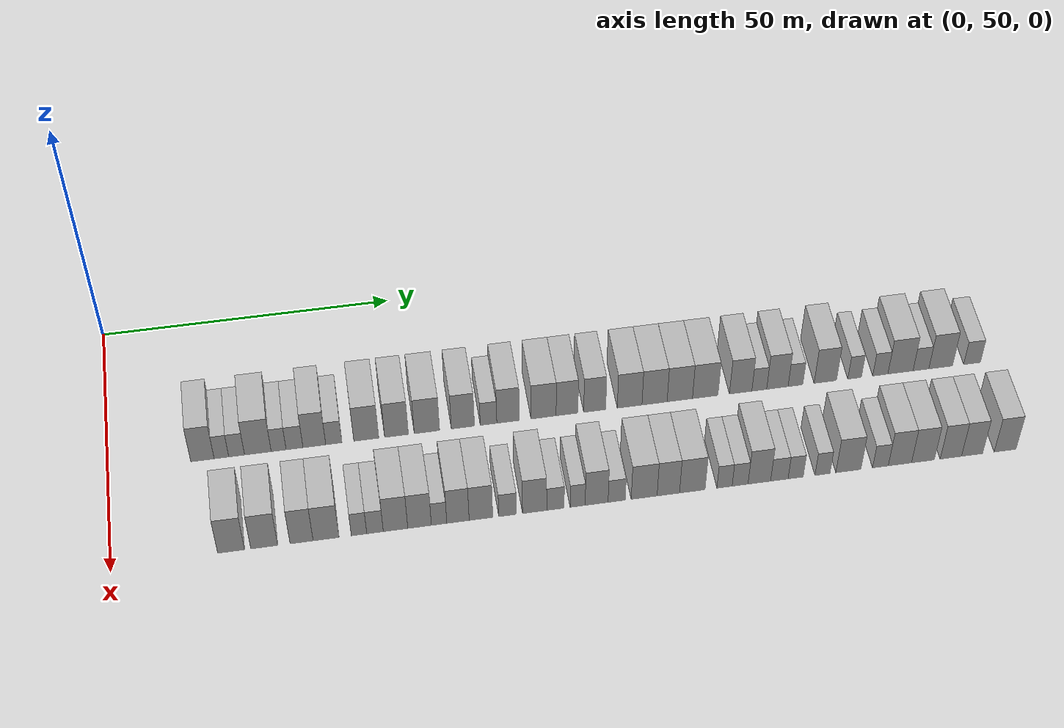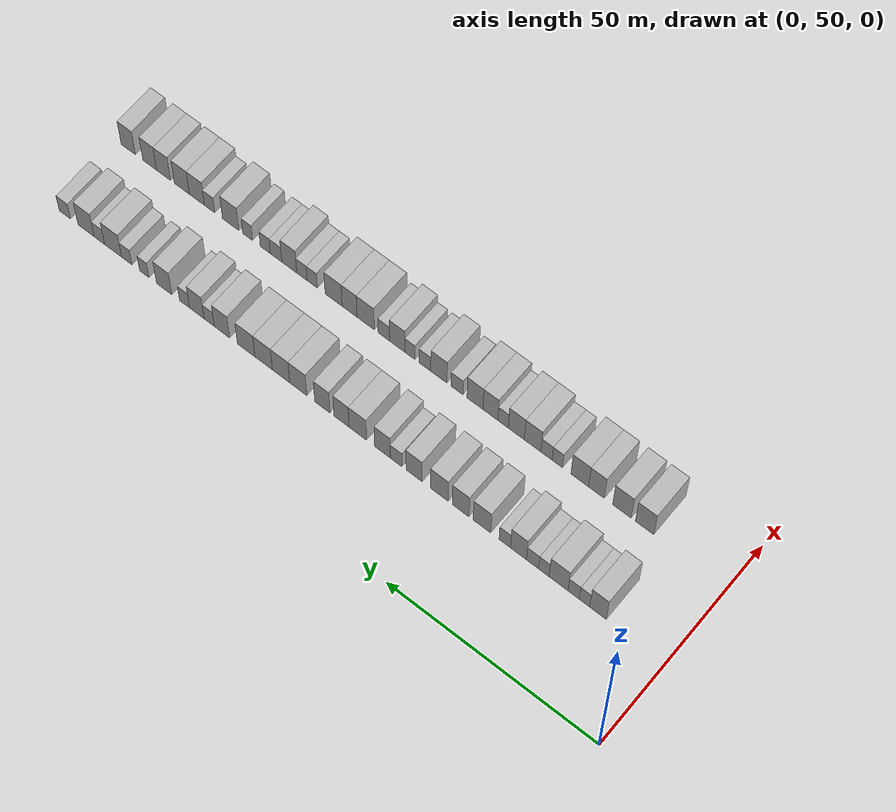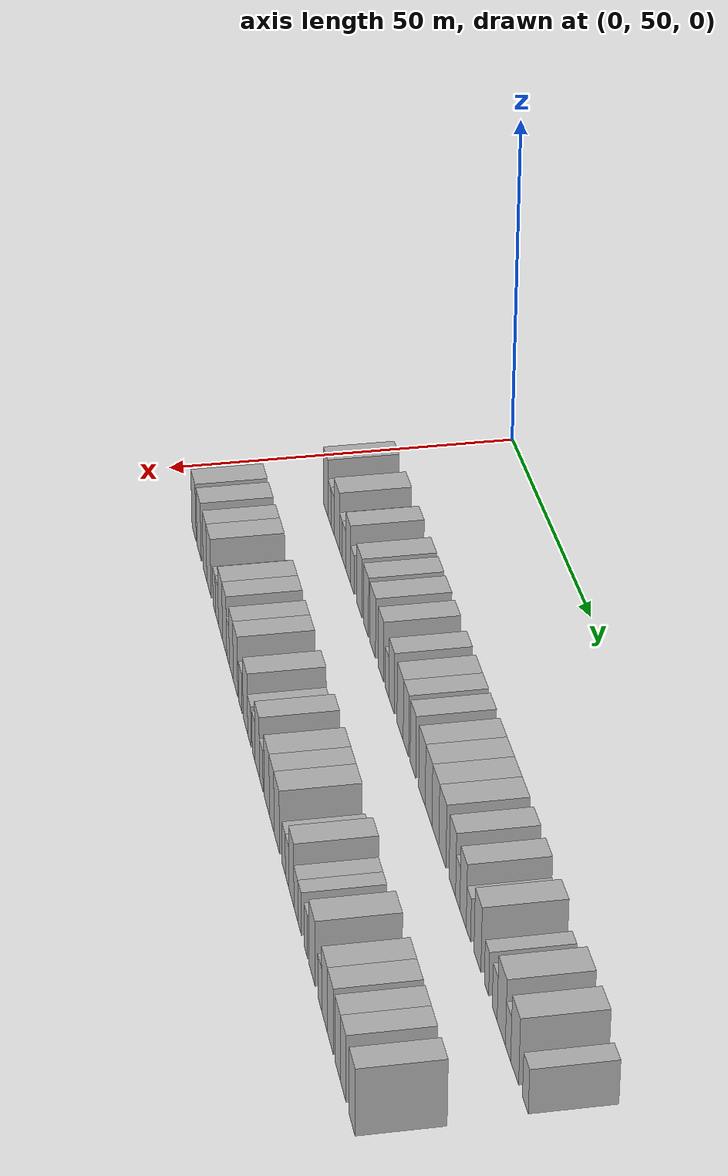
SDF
<sdf version="1.6">
 <world name="default">
  <model name="building_65">
   <static>1</static>
   <pose>25.0000 65.7250 0 0.000000 0.000000 0.000000</pose>
   <link name="link">
    <pose>0 0 4.50 0 0 0</pose>
    <collision name="collision"><geometry><box><size>10.0000 3.8782 9.0000</size></box></geometry></collision>
    <visual name="visual">
     <cast_shadows>0</cast_shadows>
     <geometry><box><size>10.0000 3.8782 9.0000</size></box></geometry>
     <material>
      <script>
       <uri>model://HANNAS_wall/materials/scripts</uri>
       <uri>model://HANNAS_wall/materials/textures</uri>
       <name>vrc/HANNAS_wall</name>
      </script>
     </material>
    </visual>
   </link>
  </model>
  <model name="building_66">
   <static>1</static>
   <pose>25.0000 68.8838 0 0.000000 0.000000 0.000000</pose>
   <link name="link">
    <pose>0 0 3.00 0 0 0</pose>
    <collision name="collision"><geometry><box><size>10.0000 2.4393 6.0000</size></box></geometry></collision>
    <visual name="visual">
     <cast_shadows>0</cast_shadows>
     <geometry><box><size>10.0000 2.4393 6.0000</size></box></geometry>
     <material>
      <script>
       <uri>model://HANNAS_wall/materials/scripts</uri>
       <uri>model://HANNAS_wall/materials/textures</uri>
       <name>vrc/HANNAS_wall</name>
      </script>
     </material>
    </visual>
   </link>
  </model>
  <model name="building_67">
   <static>1</static>
   <pose>25.0000 71.4179 0 0.000000 0.000000 0.000000</pose>
   <link name="link">
    <pose>0 0 3.00 0 0 0</pose>
    <collision name="collision"><geometry><box><size>10.0000 2.6290 6.0000</size></box></geometry></collision>
    <visual name="visual">
     <cast_shadows>0</cast_shadows>
     <geometry><box><size>10.0000 2.6290 6.0000</size></box></geometry>
     <material>
      <script>
       <uri>model://HANNAS_wall/materials/scripts</uri>
       <uri>model://HANNAS_wall/materials/textures</uri>
       <name>vrc/HANNAS_wall</name>
      </script>
     </material>
    </visual>
   </link>
  </model>
  <model name="building_68">
   <static>1</static>
   <pose>25.0000 74.9587 0 0.000000 0.000000 0.000000</pose>
   <link name="link">
    <pose>0 0 4.50 0 0 0</pose>
    <collision name="collision"><geometry><box><size>10.0000 4.4525 9.0000</size></box></geometry></collision>
    <visual name="visual">
     <cast_shadows>0</cast_shadows>
     <geometry><box><size>10.0000 4.4525 9.0000</size></box></geometry>
     <material>
      <script>
       <uri>model://HANNAS_wall/materials/scripts</uri>
       <uri>model://HANNAS_wall/materials/textures</uri>
       <name>vrc/HANNAS_wall</name>
      </script>
     </material>
    </visual>
   </link>
  </model>
  <model name="building_69">
   <static>1</static>
   <pose>25.0000 78.4332 0 0.000000 0.000000 0.000000</pose>
   <link name="link">
    <pose>0 0 3.00 0 0 0</pose>
    <collision name="collision"><geometry><box><size>10.0000 2.4965 6.0000</size></box></geometry></collision>
    <visual name="visual">
     <cast_shadows>0</cast_shadows>
     <geometry><box><size>10.0000 2.4965 6.0000</size></box></geometry>
     <material>
      <script>
       <uri>model://HANNAS_wall/materials/scripts</uri>
       <uri>model://HANNAS_wall/materials/textures</uri>
       <name>vrc/HANNAS_wall</name>
      </script>
     </material>
    </visual>
   </link>
  </model>
  <model name="building_70">
   <static>1</static>
   <pose>25.0000 81.0950 0 0.000000 0.000000 0.000000</pose>
   <link name="link">
    <pose>0 0 3.00 0 0 0</pose>
    <collision name="collision"><geometry><box><size>10.0000 2.8271 6.0000</size></box></geometry></collision>
    <visual name="visual">
     <cast_shadows>0</cast_shadows>
     <geometry><box><size>10.0000 2.8271 6.0000</size></box></geometry>
     <material>
      <script>
       <uri>model://HANNAS_wall/materials/scripts</uri>
       <uri>model://HANNAS_wall/materials/textures</uri>
       <name>vrc/HANNAS_wall</name>
      </script>
     </material>
    </visual>
   </link>
  </model>
  <model name="building_71">
   <static>1</static>
   <pose>25.0000 84.4213 0 0.000000 0.000000 0.000000</pose>
   <link name="link">
    <pose>0 0 4.50 0 0 0</pose>
    <collision name="collision"><geometry><box><size>10.0000 3.8255 9.0000</size></box></geometry></collision>
    <visual name="visual">
     <cast_shadows>0</cast_shadows>
     <geometry><box><size>10.0000 3.8255 9.0000</size></box></geometry>
     <material>
      <script>
       <uri>model://HANNAS_wall/materials/scripts</uri>
       <uri>model://HANNAS_wall/materials/textures</uri>
       <name>vrc/HANNAS_wall</name>
      </script>
     </material>
    </visual>
   </link>
  </model>
  <model name="building_72">
   <static>1</static>
   <pose>25.0000 87.6962 0 0.000000 0.000000 0.000000</pose>
   <link name="link">
    <pose>0 0 3.00 0 0 0</pose>
    <collision name="collision"><geometry><box><size>10.0000 2.7242 6.0000</size></box></geometry></collision>
    <visual name="visual">
     <cast_shadows>0</cast_shadows>
     <geometry><box><size>10.0000 2.7242 6.0000</size></box></geometry>
     <material>
      <script>
       <uri>model://HANNAS_wall/materials/scripts</uri>
       <uri>model://HANNAS_wall/materials/textures</uri>
       <name>vrc/HANNAS_wall</name>
      </script>
     </material>
    </visual>
   </link>
  </model>
  <model name="building_73">
   <static>1</static>
   <pose>25.0000 93.1624 0 0.000000 0.000000 0.000000</pose>
   <link name="link">
    <pose>0 0 4.50 0 0 0</pose>
    <collision name="collision"><geometry><box><size>10.0000 4.2083 9.0000</size></box></geometry></collision>
    <visual name="visual">
     <cast_shadows>0</cast_shadows>
     <geometry><box><size>10.0000 4.2083 9.0000</size></box></geometry>
     <material>
      <script>
       <uri>model://HANNAS_wall/materials/scripts</uri>
       <uri>model://HANNAS_wall/materials/textures</uri>
       <name>vrc/HANNAS_wall</name>
      </script>
     </material>
    </visual>
   </link>
  </model>
  <model name="building_74">
   <static>1</static>
   <pose>25.0000 98.2711 0 0.000000 0.000000 0.000000</pose>
   <link name="link">
    <pose>0 0 4.50 0 0 0</pose>
    <collision name="collision"><geometry><box><size>10.0000 4.0091 9.0000</size></box></geometry></collision>
    <visual name="visual">
     <cast_shadows>0</cast_shadows>
     <geometry><box><size>10.0000 4.0091 9.0000</size></box></geometry>
     <material>
      <script>
       <uri>model://HANNAS_wall/materials/scripts</uri>
       <uri>model://HANNAS_wall/materials/textures</uri>
       <name>vrc/HANNAS_wall</name>
      </script>
     </material>
    </visual>
   </link>
  </model>
  <model name="building_75">
   <static>1</static>
   <pose>25.0000 103.4244 0 0.000000 0.000000 0.000000</pose>
   <link name="link">
    <pose>0 0 4.50 0 0 0</pose>
    <collision name="collision"><geometry><box><size>10.0000 4.2974 9.0000</size></box></geometry></collision>
    <visual name="visual">
     <cast_shadows>0</cast_shadows>
     <geometry><box><size>10.0000 4.2974 9.0000</size></box></geometry>
     <material>
      <script>
       <uri>model://HANNAS_wall/materials/scripts</uri>
       <uri>model://HANNAS_wall/materials/textures</uri>
       <name>vrc/HANNAS_wall</name>
      </script>
     </material>
    </visual>
   </link>
  </model>
  <model name="building_76">
   <static>1</static>
   <pose>25.0000 109.5389 0 0.000000 0.000000 0.000000</pose>
   <link name="link">
    <pose>0 0 4.50 0 0 0</pose>
    <collision name="collision"><geometry><box><size>10.0000 3.9318 9.0000</size></box></geometry></collision>
    <visual name="visual">
     <cast_shadows>0</cast_shadows>
     <geometry><box><size>10.0000 3.9318 9.0000</size></box></geometry>
     <material>
      <script>
       <uri>model://HANNAS_wall/materials/scripts</uri>
       <uri>model://HANNAS_wall/materials/textures</uri>
       <name>vrc/HANNAS_wall</name>
      </script>
     </material>
    </visual>
   </link>
  </model>
  <model name="building_77">
   <static>1</static>
   <pose>25.0000 113.9187 0 0.000000 0.000000 0.000000</pose>
   <link name="link">
    <pose>0 0 3.00 0 0 0</pose>
    <collision name="collision"><geometry><box><size>10.0000 2.8277 6.0000</size></box></geometry></collision>
    <visual name="visual">
     <cast_shadows>0</cast_shadows>
     <geometry><box><size>10.0000 2.8277 6.0000</size></box></geometry>
     <material>
      <script>
       <uri>model://HANNAS_wall/materials/scripts</uri>
       <uri>model://HANNAS_wall/materials/textures</uri>
       <name>vrc/HANNAS_wall</name>
      </script>
     </material>
    </visual>
   </link>
  </model>
  <model name="building_78">
   <static>1</static>
   <pose>25.0000 117.2568 0 0.000000 0.000000 0.000000</pose>
   <link name="link">
    <pose>0 0 4.50 0 0 0</pose>
    <collision name="collision"><geometry><box><size>10.0000 3.8485 9.0000</size></box></geometry></collision>
    <visual name="visual">
     <cast_shadows>0</cast_shadows>
     <geometry><box><size>10.0000 3.8485 9.0000</size></box></geometry>
     <material>
      <script>
       <uri>model://HANNAS_wall/materials/scripts</uri>
       <uri>model://HANNAS_wall/materials/textures</uri>
       <name>vrc/HANNAS_wall</name>
      </script>
     </material>
    </visual>
   </link>
  </model>
  <model name="building_79">
   <static>1</static>
   <pose>25.0000 123.3394 0 0.000000 0.000000 0.000000</pose>
   <link name="link">
    <pose>0 0 4.50 0 0 0</pose>
    <collision name="collision"><geometry><box><size>10.0000 4.3166 9.0000</size></box></geometry></collision>
    <visual name="visual">
     <cast_shadows>0</cast_shadows>
     <geometry><box><size>10.0000 4.3166 9.0000</size></box></geometry>
     <material>
      <script>
       <uri>model://HANNAS_wall/materials/scripts</uri>
       <uri>model://HANNAS_wall/materials/textures</uri>
       <name>vrc/HANNAS_wall</name>
      </script>
     </material>
    </visual>
   </link>
  </model>
  <model name="building_80">
   <static>1</static>
   <pose>25.0000 127.3701 0 0.000000 0.000000 0.000000</pose>
   <link name="link">
    <pose>0 0 4.50 0 0 0</pose>
    <collision name="collision"><geometry><box><size>10.0000 3.7447 9.0000</size></box></geometry></collision>
    <visual name="visual">
     <cast_shadows>0</cast_shadows>
     <geometry><box><size>10.0000 3.7447 9.0000</size></box></geometry>
     <material>
      <script>
       <uri>model://HANNAS_wall/materials/scripts</uri>
       <uri>model://HANNAS_wall/materials/textures</uri>
       <name>vrc/HANNAS_wall</name>
      </script>
     </material>
    </visual>
   </link>
  </model>
  <model name="building_81">
   <static>1</static>
   <pose>25.0000 132.1347 0 0.000000 0.000000 0.000000</pose>
   <link name="link">
    <pose>0 0 4.50 0 0 0</pose>
    <collision name="collision"><geometry><box><size>10.0000 3.7845 9.0000</size></box></geometry></collision>
    <visual name="visual">
     <cast_shadows>0</cast_shadows>
     <geometry><box><size>10.0000 3.7845 9.0000</size></box></geometry>
     <material>
      <script>
       <uri>model://HANNAS_wall/materials/scripts</uri>
       <uri>model://HANNAS_wall/materials/textures</uri>
       <name>vrc/HANNAS_wall</name>
      </script>
     </material>
    </visual>
   </link>
  </model>
  <model name="building_82">
   <static>1</static>
   <pose>25.0000 138.1658 0 0.000000 0.000000 0.000000</pose>
   <link name="link">
    <pose>0 0 4.50 0 0 0</pose>
    <collision name="collision"><geometry><box><size>10.0000 4.2777 9.0000</size></box></geometry></collision>
    <visual name="visual">
     <cast_shadows>0</cast_shadows>
     <geometry><box><size>10.0000 4.2777 9.0000</size></box></geometry>
     <material>
      <script>
       <uri>model://HANNAS_wall/materials/scripts</uri>
       <uri>model://HANNAS_wall/materials/textures</uri>
       <name>vrc/HANNAS_wall</name>
      </script>
     </material>
    </visual>
   </link>
  </model>
  <model name="building_83">
   <static>1</static>
   <pose>25.0000 142.4885 0 0.000000 0.000000 0.000000</pose>
   <link name="link">
    <pose>0 0 4.50 0 0 0</pose>
    <collision name="collision"><geometry><box><size>10.0000 4.3677 9.0000</size></box></geometry></collision>
    <visual name="visual">
     <cast_shadows>0</cast_shadows>
     <geometry><box><size>10.0000 4.3677 9.0000</size></box></geometry>
     <material>
      <script>
       <uri>model://HANNAS_wall/materials/scripts</uri>
       <uri>model://HANNAS_wall/materials/textures</uri>
       <name>vrc/HANNAS_wall</name>
      </script>
     </material>
    </visual>
   </link>
  </model>
  <model name="building_84">
   <static>1</static>
   <pose>25.0000 146.8752 0 0.000000 0.000000 0.000000</pose>
   <link name="link">
    <pose>0 0 4.50 0 0 0</pose>
    <collision name="collision"><geometry><box><size>10.0000 4.4056 9.0000</size></box></geometry></collision>
    <visual name="visual">
     <cast_shadows>0</cast_shadows>
     <geometry><box><size>10.0000 4.4056 9.0000</size></box></geometry>
     <material>
      <script>
       <uri>model://HANNAS_wall/materials/scripts</uri>
       <uri>model://HANNAS_wall/materials/textures</uri>
       <name>vrc/HANNAS_wall</name>
      </script>
     </material>
    </visual>
   </link>
  </model>
  <model name="building_85">
   <static>1</static>
   <pose>25.0000 151.3005 0 0.000000 0.000000 0.000000</pose>
   <link name="link">
    <pose>0 0 4.50 0 0 0</pose>
    <collision name="collision"><geometry><box><size>10.0000 4.4450 9.0000</size></box></geometry></collision>
    <visual name="visual">
     <cast_shadows>0</cast_shadows>
     <geometry><box><size>10.0000 4.4450 9.0000</size></box></geometry>
     <material>
      <script>
       <uri>model://HANNAS_wall/materials/scripts</uri>
       <uri>model://HANNAS_wall/materials/textures</uri>
       <name>vrc/HANNAS_wall</name>
      </script>
     </material>
    </visual>
   </link>
  </model>
  <model name="building_86">
   <static>1</static>
   <pose>25.0000 157.4861 0 0.000000 0.000000 0.000000</pose>
   <link name="link">
    <pose>0 0 4.50 0 0 0</pose>
    <collision name="collision"><geometry><box><size>10.0000 3.9262 9.0000</size></box></geometry></collision>
    <visual name="visual">
     <cast_shadows>0</cast_shadows>
     <geometry><box><size>10.0000 3.9262 9.0000</size></box></geometry>
     <material>
      <script>
       <uri>model://HANNAS_wall/materials/scripts</uri>
       <uri>model://HANNAS_wall/materials/textures</uri>
       <name>vrc/HANNAS_wall</name>
      </script>
     </material>
    </visual>
   </link>
  </model>
  <model name="building_87">
   <static>1</static>
   <pose>25.0000 160.7470 0 0.000000 0.000000 0.000000</pose>
   <link name="link">
    <pose>0 0 3.00 0 0 0</pose>
    <collision name="collision"><geometry><box><size>10.0000 2.5956 6.0000</size></box></geometry></collision>
    <visual name="visual">
     <cast_shadows>0</cast_shadows>
     <geometry><box><size>10.0000 2.5956 6.0000</size></box></geometry>
     <material>
      <script>
       <uri>model://HANNAS_wall/materials/scripts</uri>
       <uri>model://HANNAS_wall/materials/textures</uri>
       <name>vrc/HANNAS_wall</name>
      </script>
     </material>
    </visual>
   </link>
  </model>
  <model name="building_88">
   <static>1</static>
   <pose>25.0000 163.9266 0 0.000000 0.000000 0.000000</pose>
   <link name="link">
    <pose>0 0 4.50 0 0 0</pose>
    <collision name="collision"><geometry><box><size>10.0000 3.7638 9.0000</size></box></geometry></collision>
    <visual name="visual">
     <cast_shadows>0</cast_shadows>
     <geometry><box><size>10.0000 3.7638 9.0000</size></box></geometry>
     <material>
      <script>
       <uri>model://HANNAS_wall/materials/scripts</uri>
       <uri>model://HANNAS_wall/materials/textures</uri>
       <name>vrc/HANNAS_wall</name>
      </script>
     </material>
    </visual>
   </link>
  </model>
  <model name="building_89">
   <static>1</static>
   <pose>25.0000 167.0963 0 0.000000 0.000000 0.000000</pose>
   <link name="link">
    <pose>0 0 3.00 0 0 0</pose>
    <collision name="collision"><geometry><box><size>10.0000 2.5755 6.0000</size></box></geometry></collision>
    <visual name="visual">
     <cast_shadows>0</cast_shadows>
     <geometry><box><size>10.0000 2.5755 6.0000</size></box></geometry>
     <material>
      <script>
       <uri>model://HANNAS_wall/materials/scripts</uri>
       <uri>model://HANNAS_wall/materials/textures</uri>
       <name>vrc/HANNAS_wall</name>
      </script>
     </material>
    </visual>
   </link>
  </model>
  <model name="building_90">
   <static>1</static>
   <pose>25.0000 172.3574 0 0.000000 0.000000 0.000000</pose>
   <link name="link">
    <pose>0 0 4.50 0 0 0</pose>
    <collision name="collision"><geometry><box><size>10.0000 3.9468 9.0000</size></box></geometry></collision>
    <visual name="visual">
     <cast_shadows>0</cast_shadows>
     <geometry><box><size>10.0000 3.9468 9.0000</size></box></geometry>
     <material>
      <script>
       <uri>model://HANNAS_wall/materials/scripts</uri>
       <uri>model://HANNAS_wall/materials/textures</uri>
       <name>vrc/HANNAS_wall</name>
      </script>
     </material>
    </visual>
   </link>
  </model>
  <model name="building_91">
   <static>1</static>
   <pose>25.0000 177.5365 0 0.000000 0.000000 0.000000</pose>
   <link name="link">
    <pose>0 0 3.00 0 0 0</pose>
    <collision name="collision"><geometry><box><size>10.0000 2.4114 6.0000</size></box></geometry></collision>
    <visual name="visual">
     <cast_shadows>0</cast_shadows>
     <geometry><box><size>10.0000 2.4114 6.0000</size></box></geometry>
     <material>
      <script>
       <uri>model://HANNAS_wall/materials/scripts</uri>
       <uri>model://HANNAS_wall/materials/textures</uri>
       <name>vrc/HANNAS_wall</name>
      </script>
     </material>
    </visual>
   </link>
  </model>
  <model name="building_92">
   <static>1</static>
   <pose>25.0000 182.0920 0 0.000000 0.000000 0.000000</pose>
   <link name="link">
    <pose>0 0 3.00 0 0 0</pose>
    <collision name="collision"><geometry><box><size>10.0000 2.6997 6.0000</size></box></geometry></collision>
    <visual name="visual">
     <cast_shadows>0</cast_shadows>
     <geometry><box><size>10.0000 2.6997 6.0000</size></box></geometry>
     <material>
      <script>
       <uri>model://HANNAS_wall/materials/scripts</uri>
       <uri>model://HANNAS_wall/materials/textures</uri>
       <name>vrc/HANNAS_wall</name>
      </script>
     </material>
    </visual>
   </link>
  </model>
  <model name="building_93">
   <static>1</static>
   <pose>25.0000 185.6768 0 0.000000 0.000000 0.000000</pose>
   <link name="link">
    <pose>0 0 4.50 0 0 0</pose>
    <collision name="collision"><geometry><box><size>10.0000 4.4699 9.0000</size></box></geometry></collision>
    <visual name="visual">
     <cast_shadows>0</cast_shadows>
     <geometry><box><size>10.0000 4.4699 9.0000</size></box></geometry>
     <material>
      <script>
       <uri>model://HANNAS_wall/materials/scripts</uri>
       <uri>model://HANNAS_wall/materials/textures</uri>
       <name>vrc/HANNAS_wall</name>
      </script>
     </material>
    </visual>
   </link>
  </model>
  <model name="building_94">
   <static>1</static>
   <pose>25.0000 189.3159 0 0.000000 0.000000 0.000000</pose>
   <link name="link">
    <pose>0 0 3.00 0 0 0</pose>
    <collision name="collision"><geometry><box><size>10.0000 2.8082 6.0000</size></box></geometry></collision>
    <visual name="visual">
     <cast_shadows>0</cast_shadows>
     <geometry><box><size>10.0000 2.8082 6.0000</size></box></geometry>
     <material>
      <script>
       <uri>model://HANNAS_wall/materials/scripts</uri>
       <uri>model://HANNAS_wall/materials/textures</uri>
       <name>vrc/HANNAS_wall</name>
      </script>
     </material>
    </visual>
   </link>
  </model>
  <model name="building_95">
   <static>1</static>
   <pose>25.0000 192.8333 0 0.000000 0.000000 0.000000</pose>
   <link name="link">
    <pose>0 0 4.50 0 0 0</pose>
    <collision name="collision"><geometry><box><size>10.0000 4.2266 9.0000</size></box></geometry></collision>
    <visual name="visual">
     <cast_shadows>0</cast_shadows>
     <geometry><box><size>10.0000 4.2266 9.0000</size></box></geometry>
     <material>
      <script>
       <uri>model://HANNAS_wall/materials/scripts</uri>
       <uri>model://HANNAS_wall/materials/textures</uri>
       <name>vrc/HANNAS_wall</name>
      </script>
     </material>
    </visual>
   </link>
  </model>
  <model name="building_96">
   <static>1</static>
   <pose>25.0000 198.4437 0 0.000000 0.000000 0.000000</pose>
   <link name="link">
    <pose>0 0 3.00 0 0 0</pose>
    <collision name="collision"><geometry><box><size>10.0000 2.9943 6.0000</size></box></geometry></collision>
    <visual name="visual">
     <cast_shadows>0</cast_shadows>
     <geometry><box><size>10.0000 2.9943 6.0000</size></box></geometry>
     <material>
      <script>
       <uri>model://HANNAS_wall/materials/scripts</uri>
       <uri>model://HANNAS_wall/materials/textures</uri>
       <name>vrc/HANNAS_wall</name>
      </script>
     </material>
    </visual>
   </link>
  </model>
  <model name="building_163">
   <static>1</static>
   <pose>44.0000 69.3342 0 0.000000 0.000000 0.000000</pose>
   <link name="link">
    <pose>0 0 4.50 0 0 0</pose>
    <collision name="collision"><geometry><box><size>10.0000 4.3236 9.0000</size></box></geometry></collision>
    <visual name="visual">
     <cast_shadows>0</cast_shadows>
     <geometry><box><size>10.0000 4.3236 9.0000</size></box></geometry>
     <material>
      <script>
       <uri>model://HANNAS_wall/materials/scripts</uri>
       <uri>model://HANNAS_wall/materials/textures</uri>
       <name>vrc/HANNAS_wall</name>
      </script>
     </material>
    </visual>
   </link>
  </model>
  <model name="building_164">
   <static>1</static>
   <pose>44.0000 74.6701 0 0.000000 0.000000 0.000000</pose>
   <link name="link">
    <pose>0 0 4.50 0 0 0</pose>
    <collision name="collision"><geometry><box><size>10.0000 4.3483 9.0000</size></box></geometry></collision>
    <visual name="visual">
     <cast_shadows>0</cast_shadows>
     <geometry><box><size>10.0000 4.3483 9.0000</size></box></geometry>
     <material>
      <script>
       <uri>model://HANNAS_wall/materials/scripts</uri>
       <uri>model://HANNAS_wall/materials/textures</uri>
       <name>vrc/HANNAS_wall</name>
      </script>
     </material>
    </visual>
   </link>
  </model>
  <model name="building_165">
   <static>1</static>
   <pose>44.0000 80.7098 0 0.000000 0.000000 0.000000</pose>
   <link name="link">
    <pose>0 0 4.50 0 0 0</pose>
    <collision name="collision"><geometry><box><size>10.0000 3.7311 9.0000</size></box></geometry></collision>
    <visual name="visual">
     <cast_shadows>0</cast_shadows>
     <geometry><box><size>10.0000 3.7311 9.0000</size></box></geometry>
     <material>
      <script>
       <uri>model://HANNAS_wall/materials/scripts</uri>
       <uri>model://HANNAS_wall/materials/textures</uri>
       <name>vrc/HANNAS_wall</name>
      </script>
     </material>
    </visual>
   </link>
  </model>
  <model name="building_166">
   <static>1</static>
   <pose>44.0000 84.6831 0 0.000000 0.000000 0.000000</pose>
   <link name="link">
    <pose>0 0 4.50 0 0 0</pose>
    <collision name="collision"><geometry><box><size>10.0000 4.2155 9.0000</size></box></geometry></collision>
    <visual name="visual">
     <cast_shadows>0</cast_shadows>
     <geometry><box><size>10.0000 4.2155 9.0000</size></box></geometry>
     <material>
      <script>
       <uri>model://HANNAS_wall/materials/scripts</uri>
       <uri>model://HANNAS_wall/materials/textures</uri>
       <name>vrc/HANNAS_wall</name>
      </script>
     </material>
    </visual>
   </link>
  </model>
  <model name="building_167">
   <static>1</static>
   <pose>44.0000 90.0458 0 0.000000 0.000000 0.000000</pose>
   <link name="link">
    <pose>0 0 3.00 0 0 0</pose>
    <collision name="collision"><geometry><box><size>10.0000 2.5099 6.0000</size></box></geometry></collision>
    <visual name="visual">
     <cast_shadows>0</cast_shadows>
     <geometry><box><size>10.0000 2.5099 6.0000</size></box></geometry>
     <material>
      <script>
       <uri>model://HANNAS_wall/materials/scripts</uri>
       <uri>model://HANNAS_wall/materials/textures</uri>
       <name>vrc/HANNAS_wall</name>
      </script>
     </material>
    </visual>
   </link>
  </model>
  <model name="building_168">
   <static>1</static>
   <pose>44.0000 92.6474 0 0.000000 0.000000 0.000000</pose>
   <link name="link">
    <pose>0 0 3.00 0 0 0</pose>
    <collision name="collision"><geometry><box><size>10.0000 2.6932 6.0000</size></box></geometry></collision>
    <visual name="visual">
     <cast_shadows>0</cast_shadows>
     <geometry><box><size>10.0000 2.6932 6.0000</size></box></geometry>
     <material>
      <script>
       <uri>model://HANNAS_wall/materials/scripts</uri>
       <uri>model://HANNAS_wall/materials/textures</uri>
       <name>vrc/HANNAS_wall</name>
      </script>
     </material>
    </visual>
   </link>
  </model>
  <model name="building_169">
   <static>1</static>
   <pose>44.0000 95.9989 0 0.000000 0.000000 0.000000</pose>
   <link name="link">
    <pose>0 0 4.50 0 0 0</pose>
    <collision name="collision"><geometry><box><size>10.0000 4.0097 9.0000</size></box></geometry></collision>
    <visual name="visual">
     <cast_shadows>0</cast_shadows>
     <geometry><box><size>10.0000 4.0097 9.0000</size></box></geometry>
     <material>
      <script>
       <uri>model://HANNAS_wall/materials/scripts</uri>
       <uri>model://HANNAS_wall/materials/textures</uri>
       <name>vrc/HANNAS_wall</name>
      </script>
     </material>
    </visual>
   </link>
  </model>
  <model name="building_170">
   <static>1</static>
   <pose>44.0000 99.9365 0 0.000000 0.000000 0.000000</pose>
   <link name="link">
    <pose>0 0 4.50 0 0 0</pose>
    <collision name="collision"><geometry><box><size>10.0000 3.8655 9.0000</size></box></geometry></collision>
    <visual name="visual">
     <cast_shadows>0</cast_shadows>
     <geometry><box><size>10.0000 3.8655 9.0000</size></box></geometry>
     <material>
      <script>
       <uri>model://HANNAS_wall/materials/scripts</uri>
       <uri>model://HANNAS_wall/materials/textures</uri>
       <name>vrc/HANNAS_wall</name>
      </script>
     </material>
    </visual>
   </link>
  </model>
  <model name="building_171">
   <static>1</static>
   <pose>44.0000 103.1350 0 0.000000 0.000000 0.000000</pose>
   <link name="link">
    <pose>0 0 3.00 0 0 0</pose>
    <collision name="collision"><geometry><box><size>10.0000 2.5315 6.0000</size></box></geometry></collision>
    <visual name="visual">
     <cast_shadows>0</cast_shadows>
     <geometry><box><size>10.0000 2.5315 6.0000</size></box></geometry>
     <material>
      <script>
       <uri>model://HANNAS_wall/materials/scripts</uri>
       <uri>model://HANNAS_wall/materials/textures</uri>
       <name>vrc/HANNAS_wall</name>
      </script>
     </material>
    </visual>
   </link>
  </model>
  <model name="building_172">
   <static>1</static>
   <pose>44.0000 106.2392 0 0.000000 0.000000 0.000000</pose>
   <link name="link">
    <pose>0 0 4.50 0 0 0</pose>
    <collision name="collision"><geometry><box><size>10.0000 3.6768 9.0000</size></box></geometry></collision>
    <visual name="visual">
     <cast_shadows>0</cast_shadows>
     <geometry><box><size>10.0000 3.6768 9.0000</size></box></geometry>
     <material>
      <script>
       <uri>model://HANNAS_wall/materials/scripts</uri>
       <uri>model://HANNAS_wall/materials/textures</uri>
       <name>vrc/HANNAS_wall</name>
      </script>
     </material>
    </visual>
   </link>
  </model>
  <model name="building_173">
   <static>1</static>
   <pose>44.0000 110.0184 0 0.000000 0.000000 0.000000</pose>
   <link name="link">
    <pose>0 0 4.50 0 0 0</pose>
    <collision name="collision"><geometry><box><size>10.0000 3.8816 9.0000</size></box></geometry></collision>
    <visual name="visual">
     <cast_shadows>0</cast_shadows>
     <geometry><box><size>10.0000 3.8816 9.0000</size></box></geometry>
     <material>
      <script>
       <uri>model://HANNAS_wall/materials/scripts</uri>
       <uri>model://HANNAS_wall/materials/textures</uri>
       <name>vrc/HANNAS_wall</name>
      </script>
     </material>
    </visual>
   </link>
  </model>
  <model name="building_174">
   <static>1</static>
   <pose>44.0000 114.4213 0 0.000000 0.000000 0.000000</pose>
   <link name="link">
    <pose>0 0 3.00 0 0 0</pose>
    <collision name="collision"><geometry><box><size>10.0000 2.9241 6.0000</size></box></geometry></collision>
    <visual name="visual">
     <cast_shadows>0</cast_shadows>
     <geometry><box><size>10.0000 2.9241 6.0000</size></box></geometry>
     <material>
      <script>
       <uri>model://HANNAS_wall/materials/scripts</uri>
       <uri>model://HANNAS_wall/materials/textures</uri>
       <name>vrc/HANNAS_wall</name>
      </script>
     </material>
    </visual>
   </link>
  </model>
  <model name="building_175">
   <static>1</static>
   <pose>44.0000 118.8833 0 0.000000 0.000000 0.000000</pose>
   <link name="link">
    <pose>0 0 4.50 0 0 0</pose>
    <collision name="collision"><geometry><box><size>10.0000 3.9999 9.0000</size></box></geometry></collision>
    <visual name="visual">
     <cast_shadows>0</cast_shadows>
     <geometry><box><size>10.0000 3.9999 9.0000</size></box></geometry>
     <material>
      <script>
       <uri>model://HANNAS_wall/materials/scripts</uri>
       <uri>model://HANNAS_wall/materials/textures</uri>
       <name>vrc/HANNAS_wall</name>
      </script>
     </material>
    </visual>
   </link>
  </model>
  <model name="building_176">
   <static>1</static>
   <pose>44.0000 122.3314 0 0.000000 0.000000 0.000000</pose>
   <link name="link">
    <pose>0 0 3.00 0 0 0</pose>
    <collision name="collision"><geometry><box><size>10.0000 2.8963 6.0000</size></box></geometry></collision>
    <visual name="visual">
     <cast_shadows>0</cast_shadows>
     <geometry><box><size>10.0000 2.8963 6.0000</size></box></geometry>
     <material>
      <script>
       <uri>model://HANNAS_wall/materials/scripts</uri>
       <uri>model://HANNAS_wall/materials/textures</uri>
       <name>vrc/HANNAS_wall</name>
      </script>
     </material>
    </visual>
   </link>
  </model>
  <model name="building_177">
   <static>1</static>
   <pose>44.0000 126.0296 0 0.000000 0.000000 0.000000</pose>
   <link name="link">
    <pose>0 0 3.00 0 0 0</pose>
    <collision name="collision"><geometry><box><size>10.0000 2.5000 6.0000</size></box></geometry></collision>
    <visual name="visual">
     <cast_shadows>0</cast_shadows>
     <geometry><box><size>10.0000 2.5000 6.0000</size></box></geometry>
     <material>
      <script>
       <uri>model://HANNAS_wall/materials/scripts</uri>
       <uri>model://HANNAS_wall/materials/textures</uri>
       <name>vrc/HANNAS_wall</name>
      </script>
     </material>
    </visual>
   </link>
  </model>
  <model name="building_178">
   <static>1</static>
   <pose>44.0000 129.1845 0 0.000000 0.000000 0.000000</pose>
   <link name="link">
    <pose>0 0 4.50 0 0 0</pose>
    <collision name="collision"><geometry><box><size>10.0000 3.8099 9.0000</size></box></geometry></collision>
    <visual name="visual">
     <cast_shadows>0</cast_shadows>
     <geometry><box><size>10.0000 3.8099 9.0000</size></box></geometry>
     <material>
      <script>
       <uri>model://HANNAS_wall/materials/scripts</uri>
       <uri>model://HANNAS_wall/materials/textures</uri>
       <name>vrc/HANNAS_wall</name>
      </script>
     </material>
    </visual>
   </link>
  </model>
  <model name="building_179">
   <static>1</static>
   <pose>44.0000 132.5199 0 0.000000 0.000000 0.000000</pose>
   <link name="link">
    <pose>0 0 3.00 0 0 0</pose>
    <collision name="collision"><geometry><box><size>10.0000 2.8609 6.0000</size></box></geometry></collision>
    <visual name="visual">
     <cast_shadows>0</cast_shadows>
     <geometry><box><size>10.0000 2.8609 6.0000</size></box></geometry>
     <material>
      <script>
       <uri>model://HANNAS_wall/materials/scripts</uri>
       <uri>model://HANNAS_wall/materials/textures</uri>
       <name>vrc/HANNAS_wall</name>
      </script>
     </material>
    </visual>
   </link>
  </model>
  <model name="building_180">
   <static>1</static>
   <pose>44.0000 137.1189 0 0.000000 0.000000 0.000000</pose>
   <link name="link">
    <pose>0 0 4.50 0 0 0</pose>
    <collision name="collision"><geometry><box><size>10.0000 4.3372 9.0000</size></box></geometry></collision>
    <visual name="visual">
     <cast_shadows>0</cast_shadows>
     <geometry><box><size>10.0000 4.3372 9.0000</size></box></geometry>
     <material>
      <script>
       <uri>model://HANNAS_wall/materials/scripts</uri>
       <uri>model://HANNAS_wall/materials/textures</uri>
       <name>vrc/HANNAS_wall</name>
      </script>
     </material>
    </visual>
   </link>
  </model>
  <model name="building_181">
   <static>1</static>
   <pose>44.0000 141.1713 0 0.000000 0.000000 0.000000</pose>
   <link name="link">
    <pose>0 0 4.50 0 0 0</pose>
    <collision name="collision"><geometry><box><size>10.0000 3.7675 9.0000</size></box></geometry></collision>
    <visual name="visual">
     <cast_shadows>0</cast_shadows>
     <geometry><box><size>10.0000 3.7675 9.0000</size></box></geometry>
     <material>
      <script>
       <uri>model://HANNAS_wall/materials/scripts</uri>
       <uri>model://HANNAS_wall/materials/textures</uri>
       <name>vrc/HANNAS_wall</name>
      </script>
     </material>
    </visual>
   </link>
  </model>
  <model name="building_182">
   <static>1</static>
   <pose>44.0000 145.1978 0 0.000000 0.000000 0.000000</pose>
   <link name="link">
    <pose>0 0 4.50 0 0 0</pose>
    <collision name="collision"><geometry><box><size>10.0000 4.2855 9.0000</size></box></geometry></collision>
    <visual name="visual">
     <cast_shadows>0</cast_shadows>
     <geometry><box><size>10.0000 4.2855 9.0000</size></box></geometry>
     <material>
      <script>
       <uri>model://HANNAS_wall/materials/scripts</uri>
       <uri>model://HANNAS_wall/materials/textures</uri>
       <name>vrc/HANNAS_wall</name>
      </script>
     </material>
    </visual>
   </link>
  </model>
  <model name="building_183">
   <static>1</static>
   <pose>44.0000 150.6256 0 0.000000 0.000000 0.000000</pose>
   <link name="link">
    <pose>0 0 3.00 0 0 0</pose>
    <collision name="collision"><geometry><box><size>10.0000 2.5701 6.0000</size></box></geometry></collision>
    <visual name="visual">
     <cast_shadows>0</cast_shadows>
     <geometry><box><size>10.0000 2.5701 6.0000</size></box></geometry>
     <material>
      <script>
       <uri>model://HANNAS_wall/materials/scripts</uri>
       <uri>model://HANNAS_wall/materials/textures</uri>
       <name>vrc/HANNAS_wall</name>
      </script>
     </material>
    </visual>
   </link>
  </model>
  <model name="building_184">
   <static>1</static>
   <pose>44.0000 153.2531 0 0.000000 0.000000 0.000000</pose>
   <link name="link">
    <pose>0 0 3.00 0 0 0</pose>
    <collision name="collision"><geometry><box><size>10.0000 2.6847 6.0000</size></box></geometry></collision>
    <visual name="visual">
     <cast_shadows>0</cast_shadows>
     <geometry><box><size>10.0000 2.6847 6.0000</size></box></geometry>
     <material>
      <script>
       <uri>model://HANNAS_wall/materials/scripts</uri>
       <uri>model://HANNAS_wall/materials/textures</uri>
       <name>vrc/HANNAS_wall</name>
      </script>
     </material>
    </visual>
   </link>
  </model>
  <model name="building_185">
   <static>1</static>
   <pose>44.0000 156.5081 0 0.000000 0.000000 0.000000</pose>
   <link name="link">
    <pose>0 0 4.50 0 0 0</pose>
    <collision name="collision"><geometry><box><size>10.0000 3.8254 9.0000</size></box></geometry></collision>
    <visual name="visual">
     <cast_shadows>0</cast_shadows>
     <geometry><box><size>10.0000 3.8254 9.0000</size></box></geometry>
     <material>
      <script>
       <uri>model://HANNAS_wall/materials/scripts</uri>
       <uri>model://HANNAS_wall/materials/textures</uri>
       <name>vrc/HANNAS_wall</name>
      </script>
     </material>
    </visual>
   </link>
  </model>
  <model name="building_186">
   <static>1</static>
   <pose>44.0000 159.9016 0 0.000000 0.000000 0.000000</pose>
   <link name="link">
    <pose>0 0 3.00 0 0 0</pose>
    <collision name="collision"><geometry><box><size>10.0000 2.9615 6.0000</size></box></geometry></collision>
    <visual name="visual">
     <cast_shadows>0</cast_shadows>
     <geometry><box><size>10.0000 2.9615 6.0000</size></box></geometry>
     <material>
      <script>
       <uri>model://HANNAS_wall/materials/scripts</uri>
       <uri>model://HANNAS_wall/materials/textures</uri>
       <name>vrc/HANNAS_wall</name>
      </script>
     </material>
    </visual>
   </link>
  </model>
  <model name="building_187">
   <static>1</static>
   <pose>44.0000 162.6649 0 0.000000 0.000000 0.000000</pose>
   <link name="link">
    <pose>0 0 3.00 0 0 0</pose>
    <collision name="collision"><geometry><box><size>10.0000 2.5652 6.0000</size></box></geometry></collision>
    <visual name="visual">
     <cast_shadows>0</cast_shadows>
     <geometry><box><size>10.0000 2.5652 6.0000</size></box></geometry>
     <material>
      <script>
       <uri>model://HANNAS_wall/materials/scripts</uri>
       <uri>model://HANNAS_wall/materials/textures</uri>
       <name>vrc/HANNAS_wall</name>
      </script>
     </material>
    </visual>
   </link>
  </model>
  <model name="building_188">
   <static>1</static>
   <pose>44.0000 167.2264 0 0.000000 0.000000 0.000000</pose>
   <link name="link">
    <pose>0 0 3.00 0 0 0</pose>
    <collision name="collision"><geometry><box><size>10.0000 2.5577 6.0000</size></box></geometry></collision>
    <visual name="visual">
     <cast_shadows>0</cast_shadows>
     <geometry><box><size>10.0000 2.5577 6.0000</size></box></geometry>
     <material>
      <script>
       <uri>model://HANNAS_wall/materials/scripts</uri>
       <uri>model://HANNAS_wall/materials/textures</uri>
       <name>vrc/HANNAS_wall</name>
      </script>
     </material>
    </visual>
   </link>
  </model>
  <model name="building_189">
   <static>1</static>
   <pose>44.0000 171.6418 0 0.000000 0.000000 0.000000</pose>
   <link name="link">
    <pose>0 0 4.50 0 0 0</pose>
    <collision name="collision"><geometry><box><size>10.0000 4.2731 9.0000</size></box></geometry></collision>
    <visual name="visual">
     <cast_shadows>0</cast_shadows>
     <geometry><box><size>10.0000 4.2731 9.0000</size></box></geometry>
     <material>
      <script>
       <uri>model://HANNAS_wall/materials/scripts</uri>
       <uri>model://HANNAS_wall/materials/textures</uri>
       <name>vrc/HANNAS_wall</name>
      </script>
     </material>
    </visual>
   </link>
  </model>
  <model name="building_190">
   <static>1</static>
   <pose>44.0000 177.1259 0 0.000000 0.000000 0.000000</pose>
   <link name="link">
    <pose>0 0 3.00 0 0 0</pose>
    <collision name="collision"><geometry><box><size>10.0000 2.6951 6.0000</size></box></geometry></collision>
    <visual name="visual">
     <cast_shadows>0</cast_shadows>
     <geometry><box><size>10.0000 2.6951 6.0000</size></box></geometry>
     <material>
      <script>
       <uri>model://HANNAS_wall/materials/scripts</uri>
       <uri>model://HANNAS_wall/materials/textures</uri>
       <name>vrc/HANNAS_wall</name>
      </script>
     </material>
    </visual>
   </link>
  </model>
  <model name="building_191">
   <static>1</static>
   <pose>44.0000 180.4679 0 0.000000 0.000000 0.000000</pose>
   <link name="link">
    <pose>0 0 4.50 0 0 0</pose>
    <collision name="collision"><geometry><box><size>10.0000 3.9891 9.0000</size></box></geometry></collision>
    <visual name="visual">
     <cast_shadows>0</cast_shadows>
     <geometry><box><size>10.0000 3.9891 9.0000</size></box></geometry>
     <material>
      <script>
       <uri>model://HANNAS_wall/materials/scripts</uri>
       <uri>model://HANNAS_wall/materials/textures</uri>
       <name>vrc/HANNAS_wall</name>
      </script>
     </material>
    </visual>
   </link>
  </model>
  <model name="building_192">
   <static>1</static>
   <pose>44.0000 184.4250 0 0.000000 0.000000 0.000000</pose>
   <link name="link">
    <pose>0 0 4.50 0 0 0</pose>
    <collision name="collision"><geometry><box><size>10.0000 3.9251 9.0000</size></box></geometry></collision>
    <visual name="visual">
     <cast_shadows>0</cast_shadows>
     <geometry><box><size>10.0000 3.9251 9.0000</size></box></geometry>
     <material>
      <script>
       <uri>model://HANNAS_wall/materials/scripts</uri>
       <uri>model://HANNAS_wall/materials/textures</uri>
       <name>vrc/HANNAS_wall</name>
      </script>
     </material>
    </visual>
   </link>
  </model>
  <model name="building_193">
   <static>1</static>
   <pose>44.0000 189.2313 0 0.000000 0.000000 0.000000</pose>
   <link name="link">
    <pose>0 0 4.50 0 0 0</pose>
    <collision name="collision"><geometry><box><size>10.0000 3.6875 9.0000</size></box></geometry></collision>
    <visual name="visual">
     <cast_shadows>0</cast_shadows>
     <geometry><box><size>10.0000 3.6875 9.0000</size></box></geometry>
     <material>
      <script>
       <uri>model://HANNAS_wall/materials/scripts</uri>
       <uri>model://HANNAS_wall/materials/textures</uri>
       <name>vrc/HANNAS_wall</name>
      </script>
     </material>
    </visual>
   </link>
  </model>
  <model name="building_194">
   <static>1</static>
   <pose>44.0000 192.8946 0 0.000000 0.000000 0.000000</pose>
   <link name="link">
    <pose>0 0 4.50 0 0 0</pose>
    <collision name="collision"><geometry><box><size>10.0000 3.6391 9.0000</size></box></geometry></collision>
    <visual name="visual">
     <cast_shadows>0</cast_shadows>
     <geometry><box><size>10.0000 3.6391 9.0000</size></box></geometry>
     <material>
      <script>
       <uri>model://HANNAS_wall/materials/scripts</uri>
       <uri>model://HANNAS_wall/materials/textures</uri>
       <name>vrc/HANNAS_wall</name>
      </script>
     </material>
    </visual>
   </link>
  </model>
  <model name="building_195">
   <static>1</static>
   <pose>44.0000 198.6055 0 0.000000 0.000000 0.000000</pose>
   <link name="link">
    <pose>0 0 4.50 0 0 0</pose>
    <collision name="collision"><geometry><box><size>10.0000 3.7828 9.0000</size></box></geometry></collision>
    <visual name="visual">
     <cast_shadows>0</cast_shadows>
     <geometry><box><size>10.0000 3.7828 9.0000</size></box></geometry>
     <material>
      <script>
       <uri>model://HANNAS_wall/materials/scripts</uri>
       <uri>model://HANNAS_wall/materials/textures</uri>
       <name>vrc/HANNAS_wall</name>
      </script>
     </material>
    </visual>
   </link>
  </model>
 </world>
</sdf>
